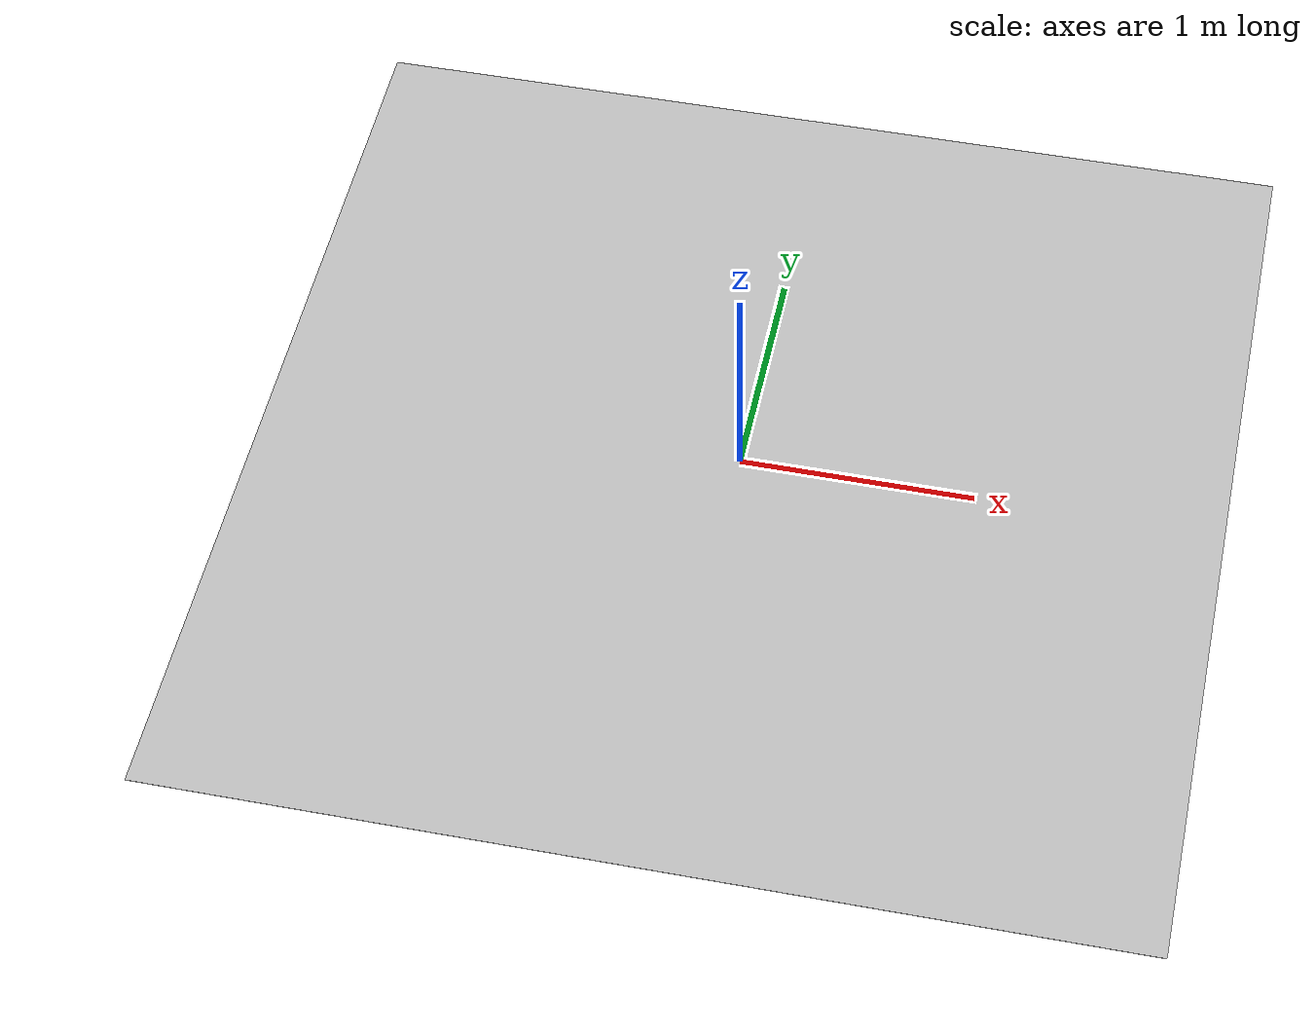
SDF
<?xml version='1.0'?>
<sdf version='1.4'>
  <model name='marker1_50cm_massless'>
    <static>1</static>
    <link name="marker1">
      <gravity>false</gravity>
      <visual name="visual">
        <geometry>
          <box>
            <size>4.1 4.1 0.001</size>
          </box>
        </geometry>
        <material>
          <script>
      <uri>model://marker1_50cm_massless/materials/scripts</uri>
      <uri>model://marker1_50cm_massless/materials/textures</uri>
            <name>Aruco/marker1_50cm</name>
          </script>
        </material>
      </visual>
      <collision name="collision">
        <geometry>
          <box>
            <size>4.1 4.1 0.02</size>
          </box>
        </geometry>
      </collision>
    </link>
  </model>
</sdf>
